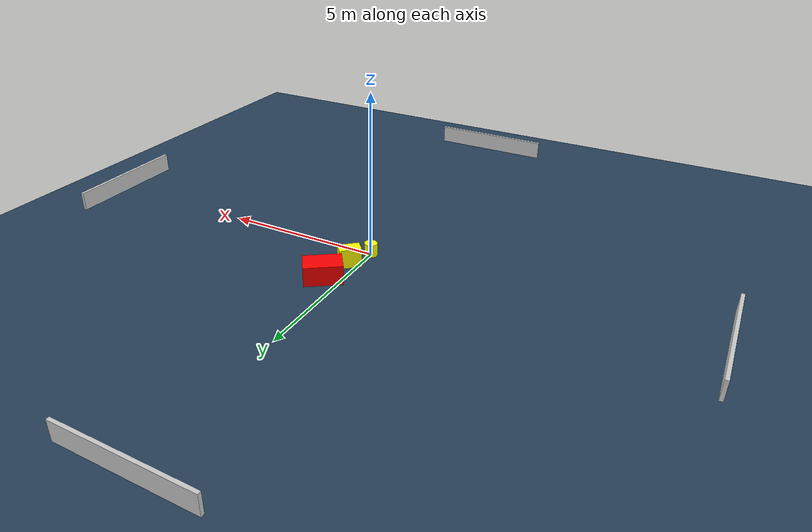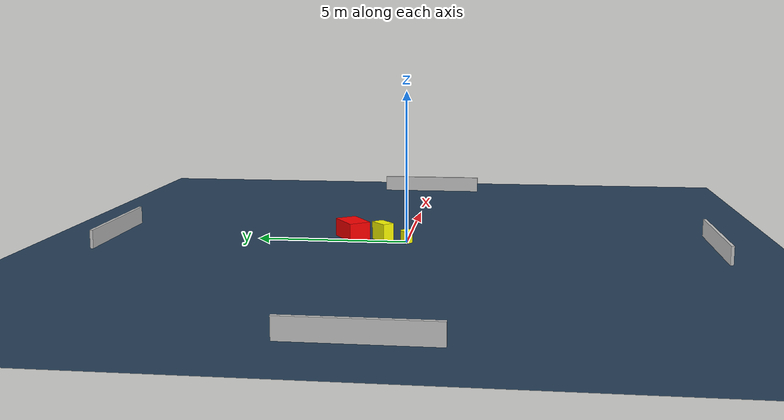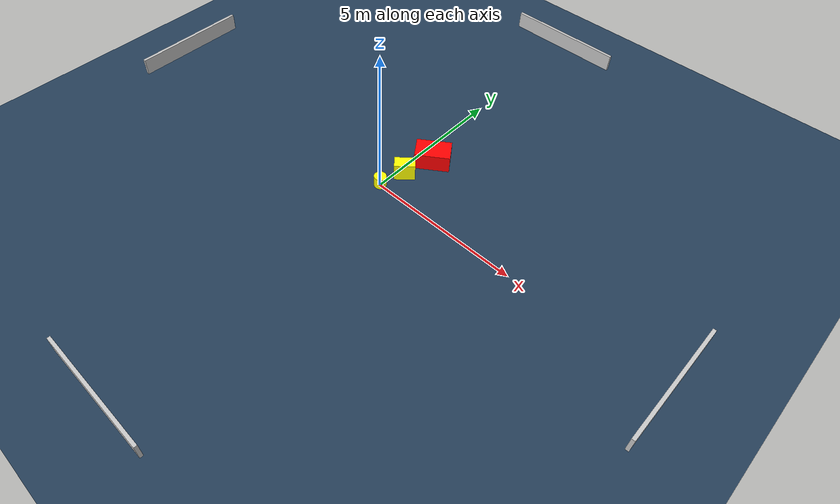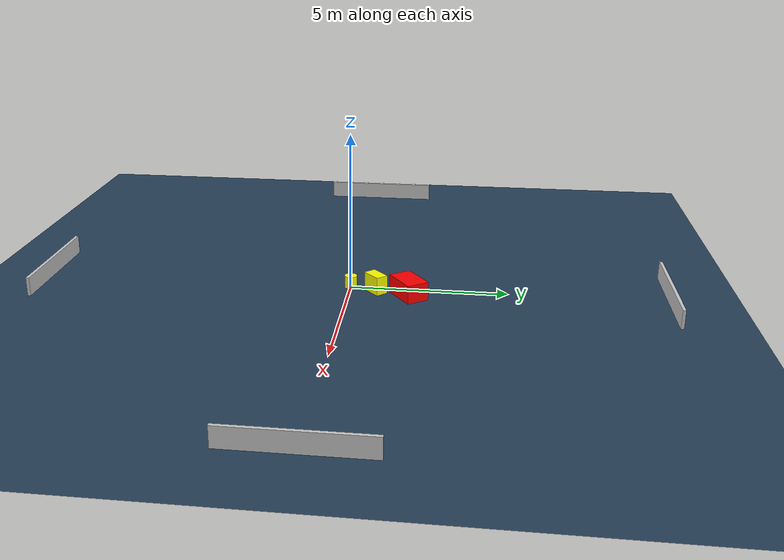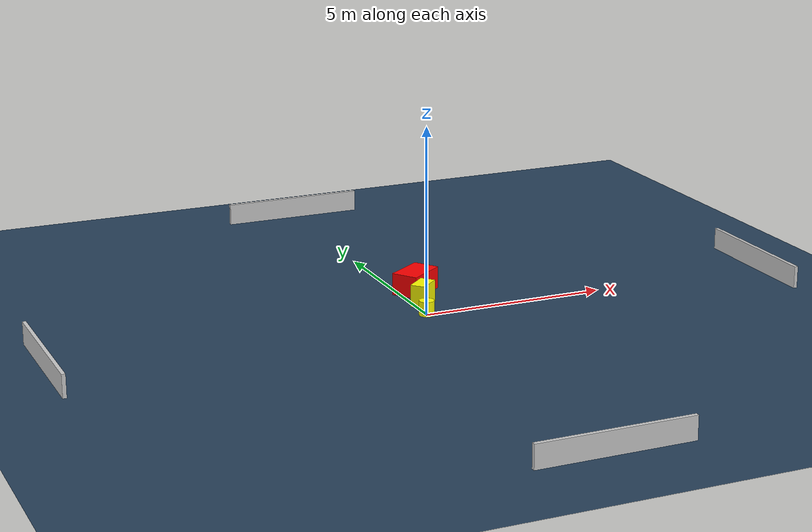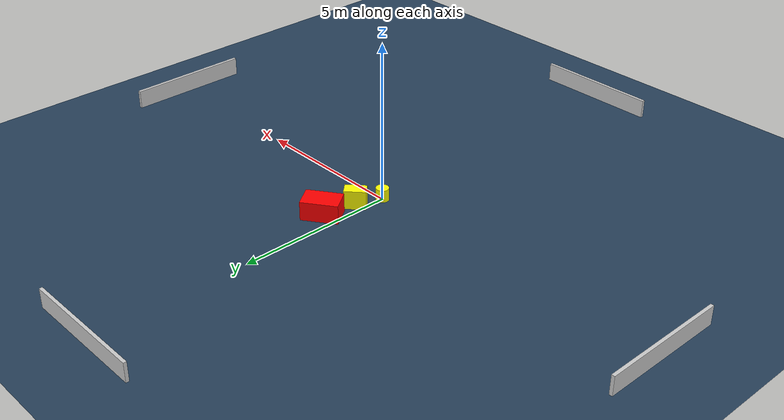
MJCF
<?xml version="1.0" ?>
<mujoco model="generated_environment">
  <option timestep="0.01" integrator="RK4" cone="elliptic"/>
  <default>
    <geom density="1"/>
  </default>
  <asset>
    <texture builtin="gradient" height="3072" name="skybox" rgb1="0.3 0.5 0.7" rgb2="0 0 0" type="skybox" width="512"/>
    <texture builtin="checker" height="300" name="groundplane" rgb1="0.2 0.3 0.4" rgb2="0.1 0.2 0.3" type="2d" width="300"/>
    <material name="groundplane" reflectance="0.2" texrepeat="5 5" texture="groundplane"/>
  </asset>
  <worldbody>
    <light dir="0 0 -1" directional="true" pos="0 0 1.5"/>
    <geom condim="3" friction="0.5 0.005 0.001" material="groundplane" name="floor" pos="0 0 0" size="0 0 0.05" type="plane"/>
    <body name="walls">
      <geom name="wall_1" condim="4" pos="-10.0 0.0 0.3" rgba="0.800000011920929 0.800000011920929 0.800000011920929 1.0" size="0.05 2.0 0.3" type="box"/>
      <geom name="wall_2" condim="4" pos="10.0 0.0 0.3" rgba="0.800000011920929 0.800000011920929 0.800000011920929 1.0" size="0.05 2.0 0.3" type="box"/>
      <geom name="wall_3" condim="4" pos="0.0 -10.0 0.3" rgba="0.800000011920929 0.800000011920929 0.800000011920929 1.0" size="2.0 0.05 0.3" type="box"/>
      <geom name="wall_4" condim="4" pos="0.0 10.0 0.3" rgba="0.800000011920929 0.800000011920929 0.800000011920929 1.0" size="2.0 0.05 0.3" type="box"/>
    </body>
    <body name="robot">
      <joint name="joint_x" type="slide" pos="0 0 0" axis="1 0 0"/>
      <joint name="joint_y" type="slide" pos="0 0 0" axis="0 1 0"/>
      <geom name="robot" type="cylinder" pos="0.0 0.0 0.2" size="0.2 0.2 0.0" mass="5.0" friction="1.0 0.005 0.0001" condim="4" rgba="1.0 1.0 0.0 1.0"/>
    </body>
    <body name="obstacle_1_movable">
      <geom name="obstacle_1_movable" condim="4" pos="0.26034909797141287 0.8345471645435163 0.3" euler="0 0 312.00766910876945" friction="0.0 0.005 0.001" rgba="1.0 1.0 0.0 1.0" size="0.20172508146567547 0.332947668990239 0.3" type="box" mass="0.1"/>
      <joint type="free"/>
    </body>
    <body name="obstacle_2_static">
      <geom name="obstacle_2_static" condim="4" pos="0.5136373320987425 1.8981494538087473 0.3" euler="0 0 125.00349115555389" friction="0.0 0.005 0.001" rgba="1.0 0.0 0.0 1.0" size="0.36823474809127454 0.5695321286719824 0.3" type="box"/>
    </body>
  </worldbody>
  <actuator>
    <motor name="actuator_x" joint="joint_x" gear="1" ctrlrange="-1 1"/>
    <motor name="actuator_y" joint="joint_y" gear="1" ctrlrange="-1 1"/>
  </actuator>
</mujoco>
